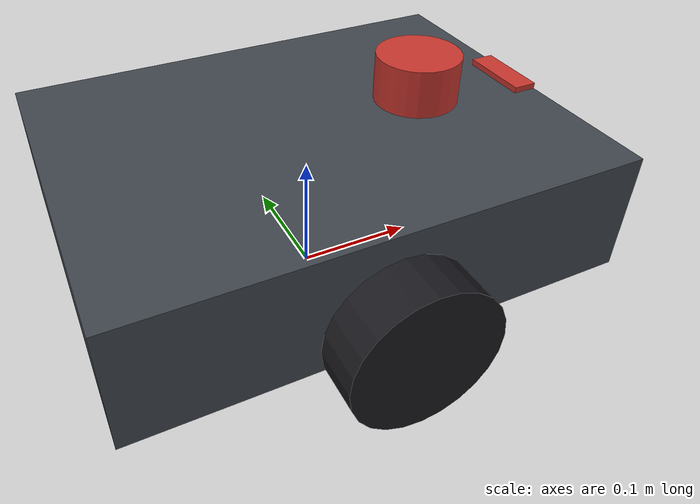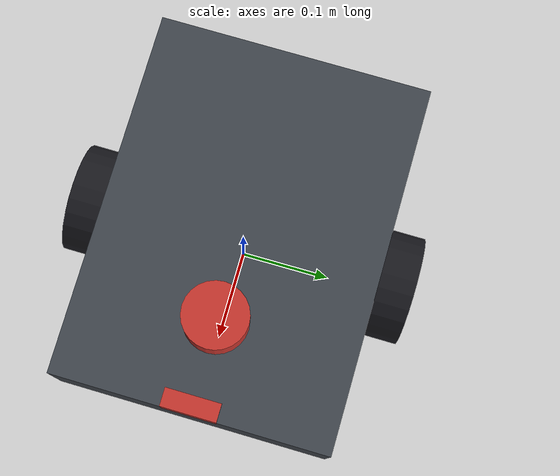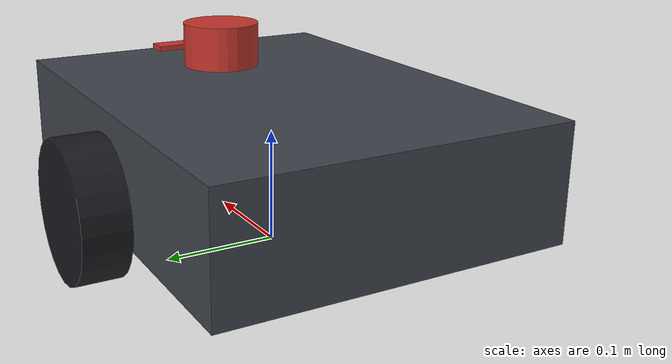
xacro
<?xml version="1.0"?>
<robot xmlns:xacro="http://www.ros.org/wiki/xacro" name="mini_bot">

  <xacro:arg name="namespace" default=""/>
  <xacro:arg name="prefix"    default=""/>
  <xacro:property name="ns"     value="$(arg namespace)"/>
  <xacro:property name="prefix" value="$(arg prefix)"/>
  <!-- Con namespace vacío los topics quedan /scan; con namespace, /robot_a/scan -->
  <xacro:property name="tns" value="${'/' + ns if ns else ''}"/>

  <xacro:include filename="$(find mini_bot)/urdf/inertials.xacro"/>

  <!-- Medidas del robot, en un solo sitio -->
  <xacro:property name="base_x"      value="0.40"/>
  <xacro:property name="base_y"      value="0.30"/>
  <xacro:property name="base_z"      value="0.10"/>
  <xacro:property name="base_mass"   value="5.0"/>
  <xacro:property name="wheel_r"     value="0.06"/>
  <xacro:property name="wheel_l"     value="0.04"/>
  <xacro:property name="wheel_mass"  value="0.5"/>
  <xacro:property name="wheel_sep"   value="0.34"/>   <!-- separación entre ruedas -->
  <xacro:property name="caster_r"    value="0.03"/>

  <material name="body_grey"><color rgba="0.25 0.27 0.30 1.0"/></material>
  <material name="accent_red"><color rgba="0.78 0.21 0.18 1.0"/></material>
  <material name="dark"><color rgba="0.10 0.10 0.12 1.0"/></material>

  <!-- ============================ GEOMETRÍA (ex01) ============================ -->

  <link name="${prefix}base_footprint"/>

  <link name="${prefix}base_link">
    <visual>
      <origin xyz="0 0 0" rpy="0 0 0"/>
      <geometry><box size="${base_x} ${base_y} ${base_z}"/></geometry>
      <material name="body_grey"/>
    </visual>
    <collision>
      <origin xyz="0 0 0" rpy="0 0 0"/>
      <geometry><box size="${base_x} ${base_y} ${base_z}"/></geometry>
    </collision>
    <xacro:box_inertia m="${base_mass}" x="${base_x}" y="${base_y}" z="${base_z}"/>
  </link>

  <joint name="base_joint" type="fixed">
    <parent link="${prefix}base_footprint"/>
    <child  link="${prefix}base_link"/>
    <origin xyz="0 0 ${wheel_r + base_z/2 - 0.02}" rpy="0 0 0"/>
  </joint>

  <!-- Una macro para las dos ruedas: cambia el lado y el signo de la Y -->
  <xacro:macro name="wheel" params="side reflect">
    <link name="${prefix}${side}_wheel_link">
      <visual>
        <origin xyz="0 0 0" rpy="${pi/2} 0 0"/>
        <geometry><cylinder radius="${wheel_r}" length="${wheel_l}"/></geometry>
        <material name="dark"/>
      </visual>
      <collision>
        <origin xyz="0 0 0" rpy="${pi/2} 0 0"/>
        <geometry><cylinder radius="${wheel_r}" length="${wheel_l}"/></geometry>
      </collision>
      <xacro:cylinder_inertia m="${wheel_mass}" r="${wheel_r}" l="${wheel_l}"/>
    </link>

    <joint name="${side}_wheel_joint" type="continuous">
      <parent link="${prefix}base_link"/>
      <child  link="${prefix}${side}_wheel_link"/>
      <origin xyz="0 ${reflect * wheel_sep/2} ${-base_z/2 + 0.02}" rpy="0 0 0"/>
      <axis xyz="0 1 0"/>
      <dynamics damping="0.05" friction="0.01"/>
    </joint>
  </xacro:macro>

  <xacro:wheel side="left"  reflect="1"/>
  <xacro:wheel side="right" reflect="-1"/>

  <link name="${prefix}caster_link">
    <visual>
      <geometry><sphere radius="${caster_r}"/></geometry>
      <material name="dark"/>
    </visual>
    <collision>
      <geometry><sphere radius="${caster_r}"/></geometry>
    </collision>
    <xacro:sphere_inertia m="0.2" r="${caster_r}"/>
  </link>

  <joint name="caster_joint" type="fixed">
    <parent link="${prefix}base_link"/>
    <child  link="${prefix}caster_link"/>
    <origin xyz="${base_x/2 - 0.05} 0 ${-base_z/2 - caster_r + 0.03}" rpy="0 0 0"/>
  </joint>

  <!-- Rozamiento bajo en la rueda loca, para que no arrastre -->
  <gazebo reference="${prefix}caster_link">
    <mu1>0.0</mu1>
    <mu2>0.0</mu2>
  </gazebo>

  <gazebo reference="${prefix}left_wheel_link">
    <mu1>1.0</mu1>
    <mu2>1.0</mu2>
  </gazebo>
  <gazebo reference="${prefix}right_wheel_link">
    <mu1>1.0</mu1>
    <mu2>1.0</mu2>
  </gazebo>

  <!-- ============================ SENSORES (ex03) ============================ -->

  <link name="${prefix}lidar_link">
    <visual>
      <geometry><cylinder radius="0.035" length="0.04"/></geometry>
      <material name="accent_red"/>
    </visual>
    <collision>
      <geometry><cylinder radius="0.035" length="0.04"/></geometry>
    </collision>
    <xacro:cylinder_inertia m="0.15" r="0.035" l="0.04"/>
  </link>

  <joint name="lidar_joint" type="fixed">
    <parent link="${prefix}base_link"/>
    <child  link="${prefix}lidar_link"/>
    <origin xyz="0.10 0 ${base_z/2 + 0.02}" rpy="0 0 0"/>
  </joint>

  <link name="${prefix}camera_link">
    <visual>
      <geometry><box size="0.02 0.06 0.03"/></geometry>
      <material name="accent_red"/>
    </visual>
    <xacro:box_inertia m="0.05" x="0.02" y="0.06" z="0.03"/>
  </link>

  <joint name="camera_joint" type="fixed">
    <parent link="${prefix}base_link"/>
    <child  link="${prefix}camera_link"/>
    <origin xyz="${base_x/2 - 0.01} 0 ${base_z/2 - 0.01}" rpy="0 0 0"/>
  </joint>

  <!-- LiDAR de baja resolución: 180 muestras a 5 Hz. Suficiente para ver el mundo,
       barato para una GPU por software. -->
  <gazebo reference="${prefix}lidar_link">
    <sensor name="lidar" type="gpu_lidar">
      <topic>${tns}/scan</topic>
      <gz_frame_id>${prefix}lidar_link</gz_frame_id>
      <update_rate>5</update_rate>
      <always_on>true</always_on>
      <visualize>true</visualize>
      <lidar>
        <scan>
          <horizontal>
            <samples>180</samples>
            <resolution>1</resolution>
            <min_angle>-1.5708</min_angle>
            <max_angle>1.5708</max_angle>
          </horizontal>
        </scan>
        <range>
          <min>0.12</min>
          <max>8.0</max>
          <resolution>0.02</resolution>
        </range>
      </lidar>
    </sensor>
  </gazebo>

  <!-- Cámara a 320x240 y 10 Hz: se ve bien en RViz y no hunde la simulación. -->
  <gazebo reference="${prefix}camera_link">
    <sensor name="camera" type="camera">
      <topic>${tns}/camera/image</topic>
      <gz_frame_id>${prefix}camera_link</gz_frame_id>
      <update_rate>10</update_rate>
      <always_on>true</always_on>
      <camera>
        <horizontal_fov>1.047</horizontal_fov>
        <image>
          <width>320</width>
          <height>240</height>
          <format>R8G8B8</format>
        </image>
        <clip>
          <near>0.1</near>
          <far>15.0</far>
        </clip>
      </camera>
    </sensor>
  </gazebo>

  <!-- IMU (extra "Un sensor más"). Va en base_link: no hace falta link nuevo. -->
  <gazebo reference="${prefix}base_link">
    <sensor name="imu" type="imu">
      <topic>${tns}/imu</topic>
      <gz_frame_id>${prefix}base_link</gz_frame_id>
      <update_rate>50</update_rate>
      <always_on>true</always_on>
    </sensor>
  </gazebo>

  <!-- ========================== ros2_control (ex05) ========================== -->

  <ros2_control name="${prefix}GazeboSimSystem" type="system">
    <hardware>
      <plugin>gz_ros2_control/GazeboSimSystem</plugin>
    </hardware>
    <joint name="left_wheel_joint">
      <command_interface name="velocity">
        <param name="min">-10.0</param>
        <param name="max">10.0</param>
      </command_interface>
      <state_interface name="position"/>
      <state_interface name="velocity"/>
    </joint>
    <joint name="right_wheel_joint">
      <command_interface name="velocity">
        <param name="min">-10.0</param>
        <param name="max">10.0</param>
      </command_interface>
      <state_interface name="position"/>
      <state_interface name="velocity"/>
    </joint>
  </ros2_control>

  <gazebo>
    <plugin filename="gz_ros2_control-system" name="gz_ros2_control::GazeboSimROS2ControlPlugin">
      <parameters>$(find mini_bot)/config/controllers.yaml</parameters>
      <ros>
        <namespace>${ns}</namespace>
      </ros>
    </plugin>
  </gazebo>

</robot>

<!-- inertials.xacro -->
<!-- Macros de inercia. No hace falta tocarlas en el taller: se usan tal cual. -->
<robot xmlns:xacro="http://www.ros.org/wiki/xacro">

  <xacro:macro name="box_inertia" params="m x y z">
    <inertial>
      <mass value="${m}"/>
      <inertia ixx="${m*(y*y+z*z)/12.0}" ixy="0.0" ixz="0.0"
               iyy="${m*(x*x+z*z)/12.0}" iyz="0.0"
               izz="${m*(x*x+y*y)/12.0}"/>
    </inertial>
  </xacro:macro>

  <xacro:macro name="cylinder_inertia" params="m r l">
    <inertial>
      <mass value="${m}"/>
      <inertia ixx="${m*(3*r*r+l*l)/12.0}" ixy="0.0" ixz="0.0"
               iyy="${m*(3*r*r+l*l)/12.0}" iyz="0.0"
               izz="${m*r*r/2.0}"/>
    </inertial>
  </xacro:macro>

  <xacro:macro name="sphere_inertia" params="m r">
    <inertial>
      <mass value="${m}"/>
      <inertia ixx="${2.0*m*r*r/5.0}" ixy="0.0" ixz="0.0"
               iyy="${2.0*m*r*r/5.0}" iyz="0.0"
               izz="${2.0*m*r*r/5.0}"/>
    </inertial>
  </xacro:macro>

</robot>
